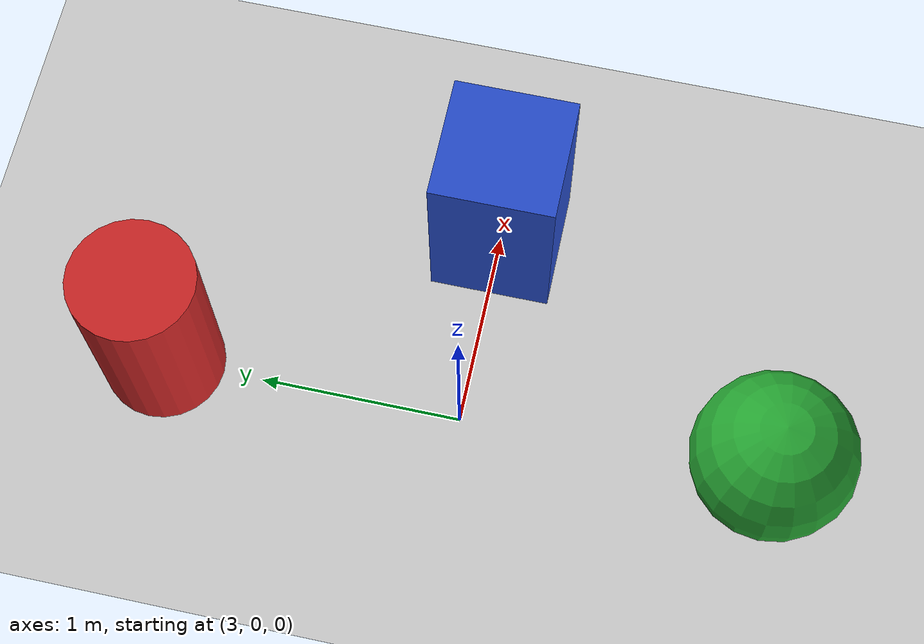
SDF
<?xml version="1.0" ?>
<sdf version="1.6">
  <world name="omnivla_training_ground">
    <include><uri>model://sun</uri></include>
    <include><uri>model://ground_plane</uri></include>

    <model name="target_red">
      <pose>3 1.5 0.5 0 0 0</pose>
      <static>true</static>
      <link name="link">
        <visual name="visual">
          <geometry><cylinder><radius>0.3</radius><length>1.0</length></cylinder></geometry>
          <material><script><uri>file://media/materials/scripts/gazebo.material</uri><name>Gazebo/Red</name></script></material>
        </visual>
        <collision name="collision">
          <geometry><cylinder><radius>0.3</radius><length>1.0</length></cylinder></geometry>
        </collision>
      </link>
    </model>

    <model name="target_blue">
      <pose>4 0 0.5 0 0 0</pose>
      <static>true</static>
      <link name="link">
        <visual name="visual">
          <geometry><box><size>0.6 0.6 1.0</size></box></geometry>
          <material><script><uri>file://media/materials/scripts/gazebo.material</uri><name>Gazebo/Blue</name></script></material>
        </visual>
        <collision name="collision">
          <geometry><box><size>0.6 0.6 1.0</size></box></geometry>
        </collision>
      </link>
    </model>

    <model name="target_green">
      <pose>3 -1.5 0.4 0 0 0</pose>
      <static>true</static>
      <link name="link">
        <visual name="visual">
          <geometry><sphere><radius>0.4</radius></sphere></geometry>
          <material><script><uri>file://media/materials/scripts/gazebo.material</uri><name>Gazebo/Green</name></script></material>
        </visual>
        <collision name="collision">
          <geometry><sphere><radius>0.4</radius></sphere></geometry>
        </collision>
      </link>
    </model>
  </world>
</sdf>
